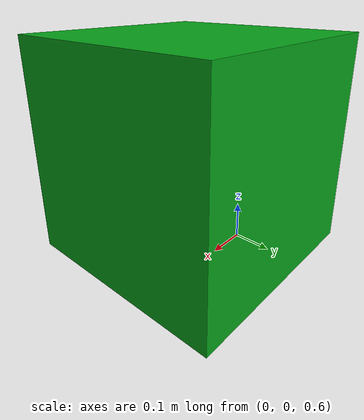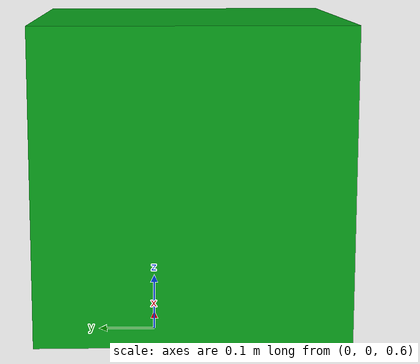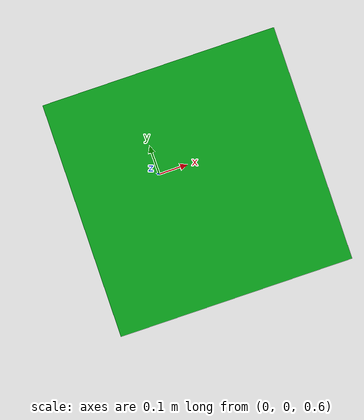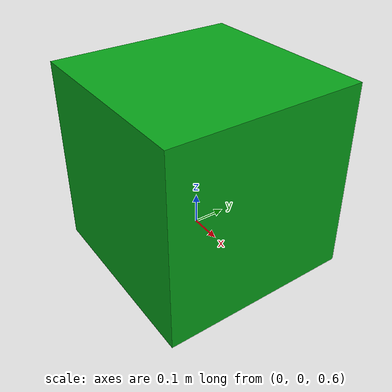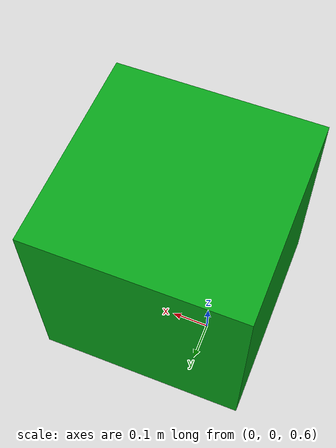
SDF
<?xml version="1.0" ?>
<sdf version="1.5">
  <model name="MBZIRC_greenCube">
    <link name="link">
      <pose>0 0 0.5 0 0 0</pose>
      <collision name="collision">
        <geometry>
          <mesh>
            <uri>model://MBZIRC_greenCube/meshes/MBZIRC_greenCube.stl</uri>
          </mesh>
        </geometry>
      </collision>
      <visual name="visual">
        <geometry>
          <mesh>
            <uri>model://MBZIRC_greenCube/meshes/MBZIRC_greenCube.dae</uri>
          </mesh>
        </geometry>
      </visual>
    </link>
  </model>
</sdf>
